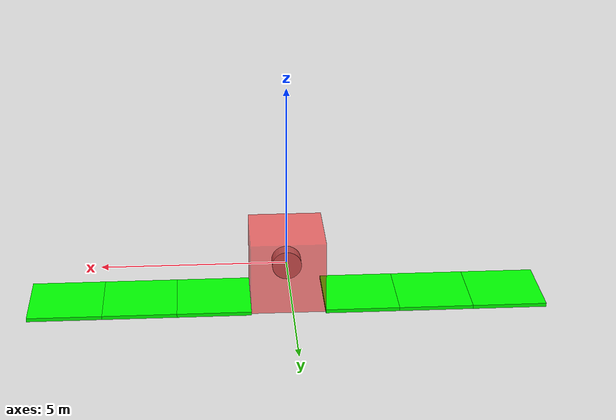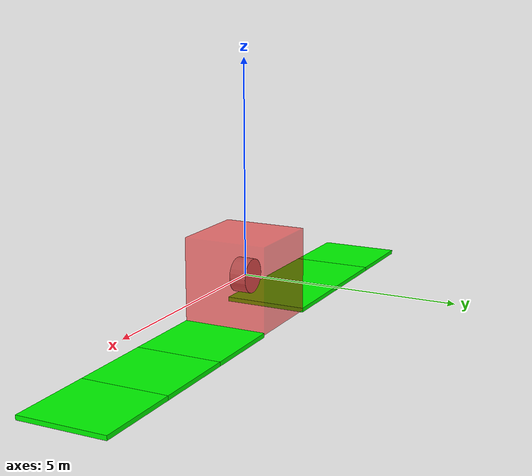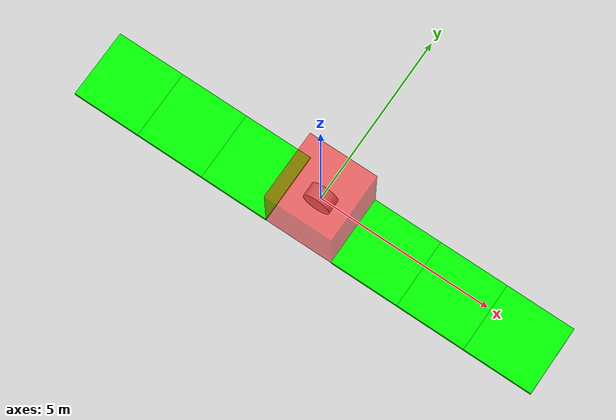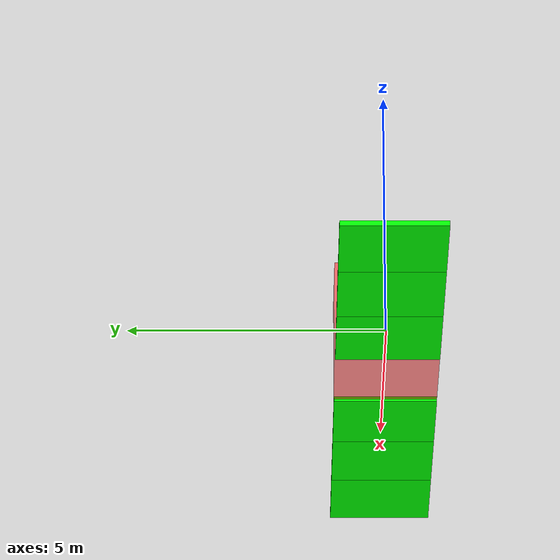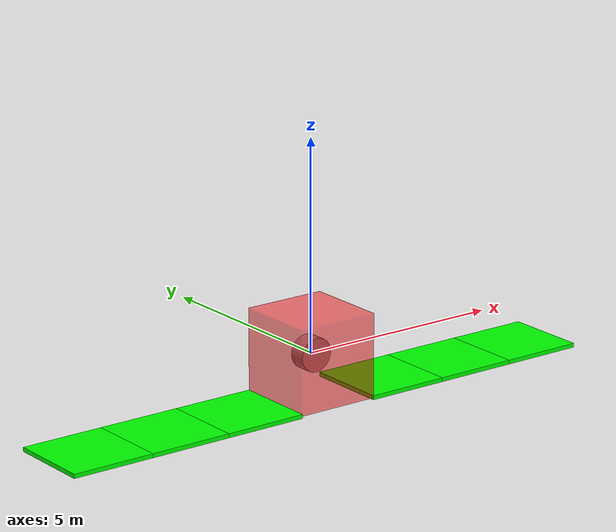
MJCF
<mujoco>
	<option gravity="0 0 0"/>

	<asset>
		<texture name="checker" builtin="checker" width="10" height="10"/>
		<material name="checker" texture="checker" />
	</asset>

	<default class="main">
		<default class="panel">
			<geom type="box" pos="0 0 1" size="1 0.05 1" rgba="0 1 0 1" contype="1" conaffinity="2"/>
		</default>
		<default class="moment_wheel">
			<geom type="cylinder" size="0.4 0.2" density="2000" material="checker" contype="1" conaffinity="2"/>
		</default>
    </default>

	<worldbody>
		<body name="hub">
			<freejoint name="hub_free"/>
			<geom name="hub_box" type="box" size="1 1 1" rgba="1 0 0 0.5" contype="1" conaffinity="2" density="200"/>

			<body name="panel_p1" childclass="panel" pos="1 0 -1" xyaxes="0 -1 0 0 0 -1">
				<geom name="panel_p1_box"/>
				<joint name="panel_p1_deploy" axis="1 0 0" range="0 90"/>
				<site name="panel_p1_centroid" pos="0 0 1" zaxis="0 -1 0"/>
                <body name="panel_p2" childclass="panel" pos="0 0 2">
                    <geom name="panel_p2_box"/>
                    <joint name="panel_p2_deploy" axis="-1 0 0" range="0 180"/>
					<site name="panel_p2_centroid" pos="0 0 1" zaxis="0 -1 0"/>
					<body name="panel_p3" childclass="panel" pos="0 0 2">
						<geom name="panel_p3_box"/>
						<joint name="panel_p3_deploy" axis="1 0 0" range="0 180"/>
					    <site name="panel_p3_centroid" pos="0 0 1" zaxis="0 -1 0"/>
					</body>
                </body>
			</body>

			<body name="panel_n1" childclass="panel" pos="-1 0 -1" xyaxes="0 1 0 0 0 -1">
				<geom name="panel_n1_box"/>
				<joint name="panel_n1_deploy" axis="1 0 0" range="0 90"/>
				<site name="panel_n1_centroid" pos="0 0 1" zaxis="0 -1 0"/>
                <body name="panel_n2" childclass="panel" pos="0 0 2">
                    <geom name="panel_n2_box"/>
                    <joint name="panel_n2_deploy" axis="-1 0 0" range="0 180"/>
					<site name="panel_n2_centroid" pos="0 0 1" zaxis="0 -1 0"/>
					<body name="panel_n3" childclass="panel" pos="0 0 2">
						<geom name="panel_n3_box"/>
						<joint name="panel_n3_deploy" axis="1 0 0" range="0 180"/>
          				<site name="panel_n3_centroid" pos="0 0 1" zaxis="0 -1 0"/>
					</body>
                </body>
			</body>

			<body name="wheel_1" childclass="moment_wheel" pos="0 0 0" xyaxes="1 0 0 0 0 1">
				<geom name="wheel_1"/>
			</body>

		</body>

	</worldbody>

	<actuator>
		<motor name="panel_p1_deploy" joint="panel_p1_deploy" />
		<motor name="panel_p2_deploy" joint="panel_p2_deploy" />
		<motor name="panel_p3_deploy" joint="panel_p3_deploy" />

		<motor name="panel_n1_deploy" joint="panel_n1_deploy" />
		<motor name="panel_n2_deploy" joint="panel_n2_deploy" />
		<motor name="panel_n3_deploy" joint="panel_n3_deploy" />

		<motor name="panel_p1_srp" site="panel_p1_centroid"  gear="0 0 -1 0 0 0"/>
		<motor name="panel_p2_srp" site="panel_p2_centroid"  gear="0 0 -1 0 0 0"/>
		<motor name="panel_p3_srp" site="panel_p3_centroid"  gear="0 0 -1 0 0 0"/>
		<motor name="panel_n1_srp" site="panel_n1_centroid"  gear="0 0 -1 0 0 0"/>
		<motor name="panel_n2_srp" site="panel_n2_centroid"  gear="0 0 -1 0 0 0"/>
		<motor name="panel_n3_srp" site="panel_n3_centroid"  gear="0 0 -1 0 0 0"/>

	</actuator>

	<keyframe>
		<key qpos='0 0 0 1 0 0 0 1.571 3.142 3.142 1.571 3.142 3.142' ctrl="-1 -0.5 -0.25 -1 -0.5 -0.25 0 0 0 0 0 0"/>
		<key qpos='0 0 0 1 0 0 0 1.571 3.142 3.142 1.571 3.142 3.142' qvel="0 0 0 0 0.3 0 0 0 0 0 0 0"/>

	</keyframe>

</mujoco>
